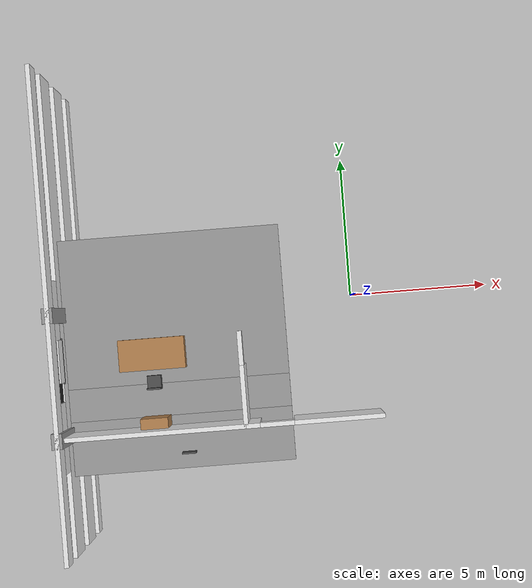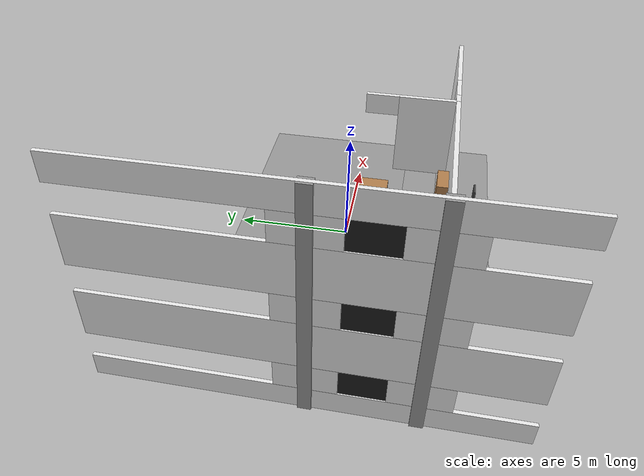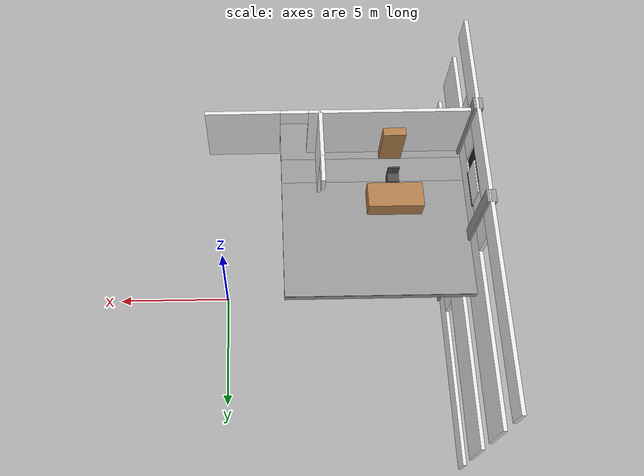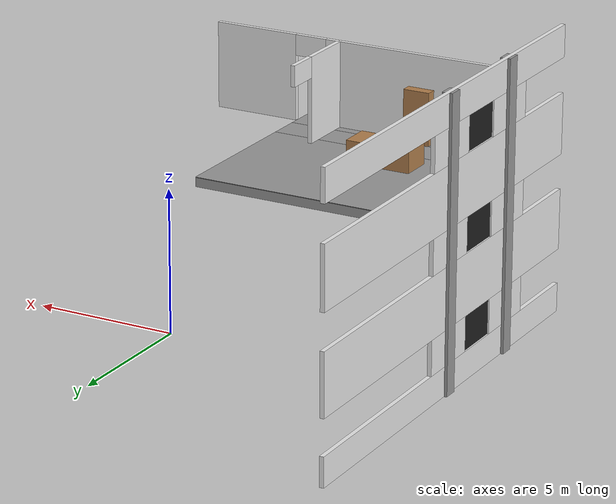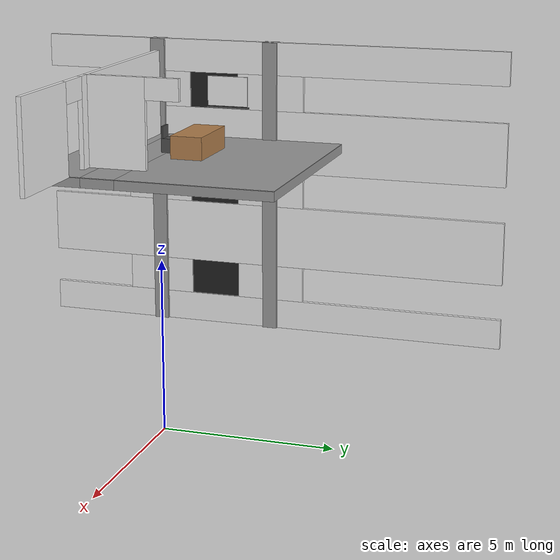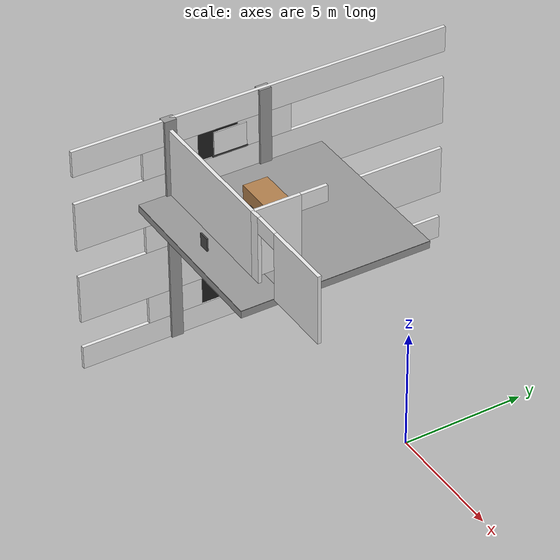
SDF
<sdf version="1.7">
 <world name="default">
  <model name="building_shell">
   <static>1</static>
   <link name="wWsb0_0">
    <pose>-10 0 0.5 0 0 0</pose>
    <collision name="c"><geometry><box><size>0.15 16 1</size></box></geometry></collision>
    <visual name="v">
     <geometry><box><size>0.15 16 1</size></box></geometry>
     <material>
      <script><uri>file://media/materials/scripts/Gazebo.material</uri><name>Gazebo/White</name></script>
     </material>
    </visual>
   </link>
   <link name="wWsb1_0">
    <pose>-10 0 3.25 0 0 0</pose>
    <collision name="c"><geometry><box><size>0.15 16 2.1</size></box></geometry></collision>
    <visual name="v">
     <geometry><box><size>0.15 16 2.1</size></box></geometry>
     <material>
      <script><uri>file://media/materials/scripts/Gazebo.material</uri><name>Gazebo/White</name></script>
     </material>
    </visual>
   </link>
   <link name="wWsb2_0">
    <pose>-10 0 6.55 0 0 0</pose>
    <collision name="c"><geometry><box><size>0.15 16 2.1</size></box></geometry></collision>
    <visual name="v">
     <geometry><box><size>0.15 16 2.1</size></box></geometry>
     <material>
      <script><uri>file://media/materials/scripts/Gazebo.material</uri><name>Gazebo/White</name></script>
     </material>
    </visual>
   </link>
   <link name="wWsb3_0">
    <pose>-10 0 9.35 0 0 0</pose>
    <collision name="c"><geometry><box><size>0.15 16 1.1</size></box></geometry></collision>
    <visual name="v">
     <geometry><box><size>0.15 16 1.1</size></box></geometry>
     <material>
      <script><uri>file://media/materials/scripts/Gazebo.material</uri><name>Gazebo/White</name></script>
     </material>
    </visual>
   </link>
   <link name="wWm0_1">
    <pose>-10 -4 1.6 0 0 0</pose>
    <collision name="c"><geometry><box><size>0.15 2.3 1.2</size></box></geometry></collision>
    <visual name="v">
     <geometry><box><size>0.15 2.3 1.2</size></box></geometry>
     <material>
      <script><uri>file://media/materials/scripts/Gazebo.material</uri><name>Gazebo/White</name></script>
     </material>
    </visual>
   </link>
   <link name="wWm0_2">
    <pose>-10 0 1.6 0 0 0</pose>
    <collision name="c"><geometry><box><size>0.15 2.3 1.2</size></box></geometry></collision>
    <visual name="v">
     <geometry><box><size>0.15 2.3 1.2</size></box></geometry>
     <material>
      <script><uri>file://media/materials/scripts/Gazebo.material</uri><name>Gazebo/White</name></script>
     </material>
    </visual>
   </link>
   <link name="wWg0_1">
    <pose>-10 -2 1.6 0 0 0</pose>
    <collision name="c"><geometry><box><size>0.05 1.7 1.2</size></box></geometry></collision>
    <visual name="v">
     <geometry><box><size>0.05 1.7 1.2</size></box></geometry>
     <material>
      <script><uri>file://media/materials/scripts/Gazebo.material</uri><name>Gazebo/FlatBlack</name></script>
     </material>
    </visual>
   </link>
   <link name="wWm1_1">
    <pose>-10 -4 4.9 0 0 0</pose>
    <collision name="c"><geometry><box><size>0.15 2.3 1.2</size></box></geometry></collision>
    <visual name="v">
     <geometry><box><size>0.15 2.3 1.2</size></box></geometry>
     <material>
      <script><uri>file://media/materials/scripts/Gazebo.material</uri><name>Gazebo/White</name></script>
     </material>
    </visual>
   </link>
   <link name="wWm1_2">
    <pose>-10 0 4.9 0 0 0</pose>
    <collision name="c"><geometry><box><size>0.15 2.3 1.2</size></box></geometry></collision>
    <visual name="v">
     <geometry><box><size>0.15 2.3 1.2</size></box></geometry>
     <material>
      <script><uri>file://media/materials/scripts/Gazebo.material</uri><name>Gazebo/White</name></script>
     </material>
    </visual>
   </link>
   <link name="wWg1_1">
    <pose>-10 -2 4.9 0 0 0</pose>
    <collision name="c"><geometry><box><size>0.05 1.7 1.2</size></box></geometry></collision>
    <visual name="v">
     <geometry><box><size>0.05 1.7 1.2</size></box></geometry>
     <material>
      <script><uri>file://media/materials/scripts/Gazebo.material</uri><name>Gazebo/FlatBlack</name></script>
     </material>
    </visual>
   </link>
   <link name="wWm2_1">
    <pose>-10 -4 8.2 0 0 0</pose>
    <collision name="c"><geometry><box><size>0.15 2.3 1.2</size></box></geometry></collision>
    <visual name="v">
     <geometry><box><size>0.15 2.3 1.2</size></box></geometry>
     <material>
      <script><uri>file://media/materials/scripts/Gazebo.material</uri><name>Gazebo/White</name></script>
     </material>
    </visual>
   </link>
   <link name="wWm2_2">
    <pose>-10 0 8.2 0 0 0</pose>
    <collision name="c"><geometry><box><size>0.15 2.3 1.2</size></box></geometry></collision>
    <visual name="v">
     <geometry><box><size>0.15 2.3 1.2</size></box></geometry>
     <material>
      <script><uri>file://media/materials/scripts/Gazebo.material</uri><name>Gazebo/White</name></script>
     </material>
    </visual>
   </link>
   <link name="wWg2_1">
    <pose>-10 -2 8.2 0 0 0</pose>
    <collision name="c"><geometry><box><size>0.05 1.7 1.2</size></box></geometry></collision>
    <visual name="v">
     <geometry><box><size>0.05 1.7 1.2</size></box></geometry>
     <material>
      <script><uri>file://media/materials/scripts/Gazebo.material</uri><name>Gazebo/FlatBlack</name></script>
     </material>
    </visual>
   </link>
   <link name="wWpil-4">
    <pose>-10 -4 4.95 0 0 0</pose>
    <collision name="c"><geometry><box><size>0.35 0.5 9.9</size></box></geometry></collision>
    <visual name="v">
     <geometry><box><size>0.35 0.5 9.9</size></box></geometry>
     <material>
      <script><uri>file://media/materials/scripts/Gazebo.material</uri><name>Gazebo/Grey</name></script>
     </material>
    </visual>
   </link>
   <link name="wWpil0">
    <pose>-10 0 4.95 0 0 0</pose>
    <collision name="c"><geometry><box><size>0.35 0.5 9.9</size></box></geometry></collision>
    <visual name="v">
     <geometry><box><size>0.35 0.5 9.9</size></box></geometry>
     <material>
      <script><uri>file://media/materials/scripts/Gazebo.material</uri><name>Gazebo/Grey</name></script>
     </material>
    </visual>
   </link>
  </model>
  <model name="building_L3">
   <static>1</static>
   <link name="floor2_1">
    <pose>-6.25 -4.5 6.45 0 0 0</pose>
    <collision name="c"><geometry><box><size>7.5 1.8 0.3</size></box></geometry></collision>
    <visual name="v">
     <geometry><box><size>7.5 1.8 0.3</size></box></geometry>
     <material>
      <script><uri>file://media/materials/scripts/Gazebo.material</uri><name>Gazebo/Grey</name></script>
     </material>
    </visual>
   </link>
   <link name="floor2c_1">
    <pose>-6.25 -4.5 6.61 0 0 0</pose>
    <collision name="c"><geometry><box><size>7.5 1.8 0.02</size></box></geometry></collision>
    <visual name="v">
     <geometry><box><size>7.5 1.8 0.02</size></box></geometry>
     <material>
      <script><uri>file://media/materials/scripts/Gazebo.material</uri><name>Gazebo/Grey</name></script>
     </material>
    </visual>
   </link>
   <link name="floor2_2">
    <pose>-6.25 -3.05 6.45 0 0 0</pose>
    <collision name="c"><geometry><box><size>7.5 1.1 0.3</size></box></geometry></collision>
    <visual name="v">
     <geometry><box><size>7.5 1.1 0.3</size></box></geometry>
     <material>
      <script><uri>file://media/materials/scripts/Gazebo.material</uri><name>Gazebo/Grey</name></script>
     </material>
    </visual>
   </link>
   <link name="floor2c_2">
    <pose>-6.25 -3.05 6.61 0 0 0</pose>
    <collision name="c"><geometry><box><size>7.5 1.1 0.02</size></box></geometry></collision>
    <visual name="v">
     <geometry><box><size>7.5 1.1 0.02</size></box></geometry>
     <material>
      <script><uri>file://media/materials/scripts/Gazebo.material</uri><name>Gazebo/Grey</name></script>
     </material>
    </visual>
   </link>
   <link name="floor2_3">
    <pose>-6.25 0 6.45 0 0 0</pose>
    <collision name="c"><geometry><box><size>7.5 5 0.3</size></box></geometry></collision>
    <visual name="v">
     <geometry><box><size>7.5 5 0.3</size></box></geometry>
     <material>
      <script><uri>file://media/materials/scripts/Gazebo.material</uri><name>Gazebo/Grey</name></script>
     </material>
    </visual>
   </link>
   <link name="floor2c_3">
    <pose>-6.25 0 6.61 0 0 0</pose>
    <collision name="c"><geometry><box><size>7.5 5 0.02</size></box></geometry></collision>
    <visual name="v">
     <geometry><box><size>7.5 5 0.02</size></box></geometry>
     <material>
      <script><uri>file://media/materials/scripts/Gazebo.material</uri><name>Gazebo/Grey</name></script>
     </material>
    </visual>
   </link>
   <link name="w2_1_0">
    <pose>-3.775 -4 8.05 0 0 0</pose>
    <collision name="c"><geometry><box><size>0.45 0.15 2.9</size></box></geometry></collision>
    <visual name="v">
     <geometry><box><size>0.45 0.15 2.9</size></box></geometry>
     <material>
      <script><uri>file://media/materials/scripts/Gazebo.material</uri><name>Gazebo/White</name></script>
     </material>
    </visual>
   </link>
   <link name="w2_1_1">
    <pose>-1 -4 8.05 0 0 0</pose>
    <collision name="c"><geometry><box><size>2.9 0.15 2.9</size></box></geometry></collision>
    <visual name="v">
     <geometry><box><size>2.9 0.15 2.9</size></box></geometry>
     <material>
      <script><uri>file://media/materials/scripts/Gazebo.material</uri><name>Gazebo/White</name></script>
     </material>
    </visual>
   </link>
   <link name="w2_1_L0">
    <pose>-3 -4 9.15 0 0 0</pose>
    <collision name="c"><geometry><box><size>1.1 0.15 0.7</size></box></geometry></collision>
    <visual name="v">
     <geometry><box><size>1.1 0.15 0.7</size></box></geometry>
     <material>
      <script><uri>file://media/materials/scripts/Gazebo.material</uri><name>Gazebo/White</name></script>
     </material>
    </visual>
   </link>
   <link name="w2_2_0">
    <pose>-4 -3.025 8.05 0 0 0</pose>
    <collision name="c"><geometry><box><size>0.15 1.95 2.9</size></box></geometry></collision>
    <visual name="v">
     <geometry><box><size>0.15 1.95 2.9</size></box></geometry>
     <material>
      <script><uri>file://media/materials/scripts/Gazebo.material</uri><name>Gazebo/White</name></script>
     </material>
    </visual>
   </link>
   <link name="w2_2_L1">
    <pose>-4 -1.5 9.15 0 0 0</pose>
    <collision name="c"><geometry><box><size>0.15 1.1 0.7</size></box></geometry></collision>
    <visual name="v">
     <geometry><box><size>0.15 1.1 0.7</size></box></geometry>
     <material>
      <script><uri>file://media/materials/scripts/Gazebo.material</uri><name>Gazebo/White</name></script>
     </material>
    </visual>
   </link>
   <link name="w2_7_0">
    <pose>-7 -4 8.05 0 0 0</pose>
    <collision name="c"><geometry><box><size>6 0.15 2.9</size></box></geometry></collision>
    <visual name="v">
     <geometry><box><size>6 0.15 2.9</size></box></geometry>
     <material>
      <script><uri>file://media/materials/scripts/Gazebo.material</uri><name>Gazebo/White</name></script>
     </material>
    </visual>
   </link>
   <link name="f2_W2mtt">
    <pose>-7 -1.5 6.98 0 0 0</pose>
    <collision name="c"><geometry><box><size>2.2 1.05 0.76</size></box></geometry></collision>
    <visual name="v">
     <geometry><box><size>2.2 1.05 0.76</size></box></geometry>
     <material>
      <script><uri>file://media/materials/scripts/Gazebo.material</uri><name>Gazebo/Wood</name></script>
     </material>
    </visual>
   </link>
   <link name="f2_W2c2s">
    <pose>-7 -2.45 6.84 0 0 0</pose>
    <collision name="c"><geometry><box><size>0.46 0.46 0.48</size></box></geometry></collision>
    <visual name="v">
     <geometry><box><size>0.46 0.46 0.48</size></box></geometry>
     <material>
      <script><uri>file://media/materials/scripts/Gazebo.material</uri><name>Gazebo/DarkGrey</name></script>
     </material>
    </visual>
   </link>
   <link name="f2_W2c2b">
    <pose>-7 -2.65 7.2 0 0 0</pose>
    <collision name="c"><geometry><box><size>0.46 0.06 0.55</size></box></geometry></collision>
    <visual name="v">
     <geometry><box><size>0.46 0.06 0.55</size></box></geometry>
     <material>
      <script><uri>file://media/materials/scripts/Gazebo.material</uri><name>Gazebo/DarkGrey</name></script>
     </material>
    </visual>
   </link>
   <link name="f2_W2bsf">
    <pose>-7 -3.75 7.5 0 0 0</pose>
    <collision name="c"><geometry><box><size>0.9 0.35 1.8</size></box></geometry></collision>
    <visual name="v">
     <geometry><box><size>0.9 0.35 1.8</size></box></geometry>
     <material>
      <script><uri>file://media/materials/scripts/Gazebo.material</uri><name>Gazebo/Wood</name></script>
     </material>
    </visual>
   </link>
   <link name="f2_W2bsb0">
    <pose>-7 -3.75 7.05 0 0 0</pose>
    <collision name="c"><geometry><box><size>0.8 0.28 0.32</size></box></geometry></collision>
    <visual name="v">
     <geometry><box><size>0.8 0.28 0.32</size></box></geometry>
     <material>
      <script><uri>file://media/materials/scripts/Gazebo.material</uri><name>Gazebo/Grey</name></script>
     </material>
    </visual>
   </link>
   <link name="f2_W2bsb1">
    <pose>-7 -3.75 7.55 0 0 0</pose>
    <collision name="c"><geometry><box><size>0.8 0.28 0.32</size></box></geometry></collision>
    <visual name="v">
     <geometry><box><size>0.8 0.28 0.32</size></box></geometry>
     <material>
      <script><uri>file://media/materials/scripts/Gazebo.material</uri><name>Gazebo/Grey</name></script>
     </material>
    </visual>
   </link>
   <link name="f2_W2bsb2">
    <pose>-7 -3.75 8.05 0 0 0</pose>
    <collision name="c"><geometry><box><size>0.8 0.28 0.32</size></box></geometry></collision>
    <visual name="v">
     <geometry><box><size>0.8 0.28 0.32</size></box></geometry>
     <material>
      <script><uri>file://media/materials/scripts/Gazebo.material</uri><name>Gazebo/Grey</name></script>
     </material>
    </visual>
   </link>
   <link name="f2_W2wbw">
    <pose>-9.895 -1.5 8.2 0 0 0</pose>
    <collision name="c"><geometry><box><size>0.05 1.4 1</size></box></geometry></collision>
    <visual name="v">
     <geometry><box><size>0.05 1.4 1</size></box></geometry>
     <material>
      <script><uri>file://media/materials/scripts/Gazebo.material</uri><name>Gazebo/White</name></script>
     </material>
    </visual>
   </link>
   <link name="f2_W2wbf">
    <pose>-9.895 -1.5 7.65 0 0 0</pose>
    <collision name="c"><geometry><box><size>0.06 1.5 0.06</size></box></geometry></collision>
    <visual name="v">
     <geometry><box><size>0.06 1.5 0.06</size></box></geometry>
     <material>
      <script><uri>file://media/materials/scripts/Gazebo.material</uri><name>Gazebo/DarkGrey</name></script>
     </material>
    </visual>
   </link>
   <link name="f2_S1c3b">
    <pose>-6 -4.85 7.2 0 0 0</pose>
    <collision name="c"><geometry><box><size>0.46 0.06 0.55</size></box></geometry></collision>
    <visual name="v">
     <geometry><box><size>0.46 0.06 0.55</size></box></geometry>
     <material>
      <script><uri>file://media/materials/scripts/Gazebo.material</uri><name>Gazebo/DarkGrey</name></script>
     </material>
    </visual>
   </link>
  </model>
 </world>
</sdf>
